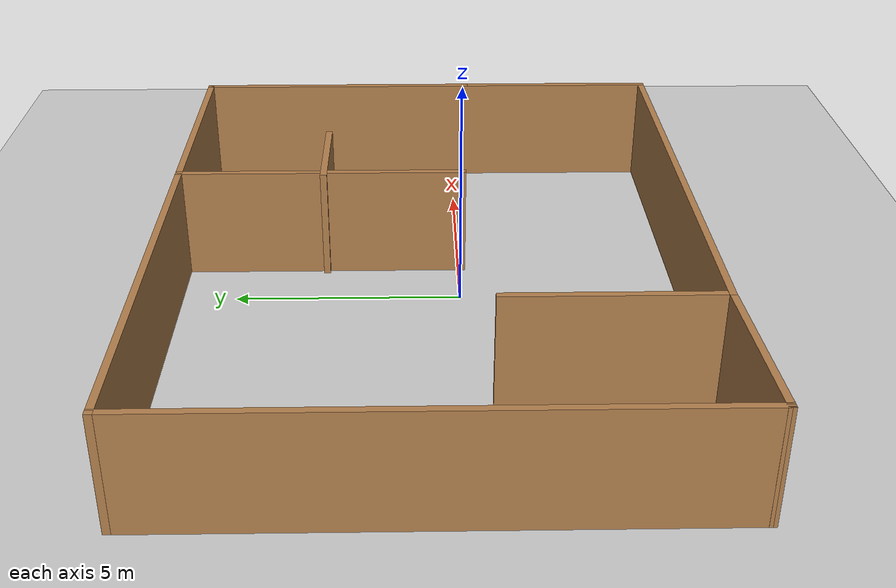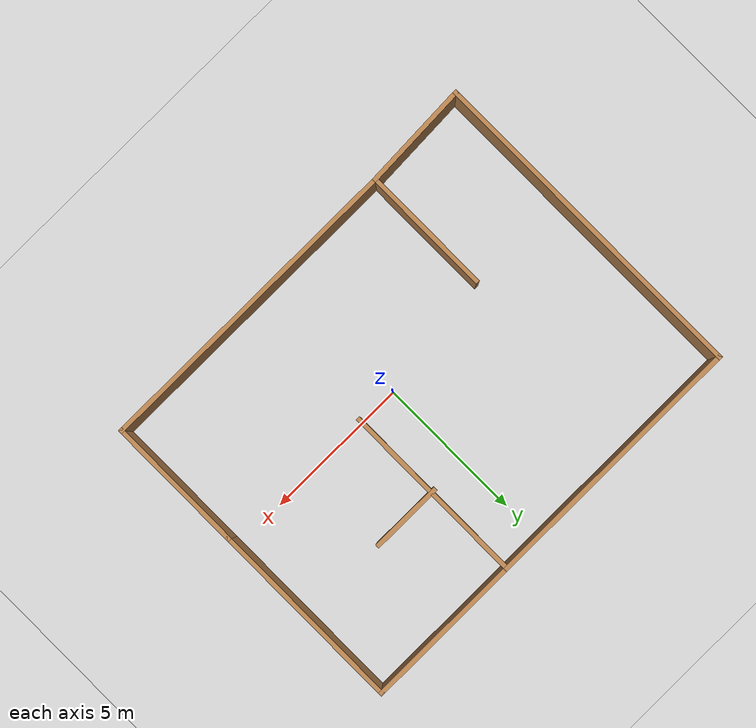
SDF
<sdf version="1.7">
 <world name="default">
  <light name="sun" type="directional">
   <pose>0 0 10 0 -0 0</pose>
   <diffuse>0.8 0.8 0.8 1</diffuse>
   <specular>0.2 0.2 0.2 1</specular>
   <attenuation>
    <range>1000</range>
    <constant>0.9</constant>
    <linear>0.01</linear>
    <quadratic>0.001</quadratic>
   </attenuation>
   <direction>-0.5 0.1 -0.9</direction>
   <spot><inner_angle>0</inner_angle><outer_angle>0</outer_angle><falloff>0</falloff></spot>
  </light>
  <model name="ground_plane">
   <static>1</static>
   <link name="link">
    <collision name="collision">
     <geometry><plane><normal>0 0 1</normal><size>100 100</size></plane></geometry>
     <surface>
      <contact><collide_bitmask>65535</collide_bitmask></contact>
      <friction><ode><mu>100</mu><mu2>50</mu2></ode></friction>
     </surface>
    </collision>
    <visual name="visual">
     <cast_shadows>0</cast_shadows>
     <geometry><plane><normal>0 0 1</normal><size>100 100</size></plane></geometry>
     <material>
      <script><uri>file://media/materials/scripts/gazebo.material</uri><name>Gazebo/Grey</name></script>
     </material>
    </visual>
   </link>
  </model>
  <gravity>0 0 -9.8</gravity>
  <magnetic_field>6e-06 2.3e-05 -4.2e-05</magnetic_field>
  <atmosphere type="adiabatic"/>
  <physics type="ode">
   <max_step_size>0.001</max_step_size>
   <real_time_factor>1</real_time_factor>
   <real_time_update_rate>1000</real_time_update_rate>
  </physics>
  <scene><ambient>0.4 0.4 0.4 1</ambient><background>0.7 0.7 0.7 1</background><shadows>1</shadows></scene>
  <spherical_coordinates>
   <surface_model>EARTH_WGS84</surface_model>
   <latitude_deg>0</latitude_deg>
   <longitude_deg>0</longitude_deg>
   <elevation>0</elevation>
   <heading_deg>0</heading_deg>
  </spherical_coordinates>
  <model name="haris">
   <pose>-0.526529 0.593472 0 0 -0 0</pose>
   <link name="Wall_0">
    <collision name="Wall_0_Collision">
     <geometry><box><size>4.5 0.15 2.5</size></box></geometry>
     <pose>0 0 1.25 0 -0 0</pose>
    </collision>
    <visual name="Wall_0_Visual">
     <pose>0 0 1.25 0 -0 0</pose>
     <geometry><box><size>4.5 0.15 2.5</size></box></geometry>
     <material>
      <script><uri>file://media/materials/scripts/gazebo.material</uri><name>Gazebo/Wood</name></script>
      <ambient>1 1 1 1</ambient>
     </material>
     <meta><layer>0</layer></meta>
    </visual>
    <pose>-3.62347 -3.34847 0 0 -0 -1.5708</pose>
   </link>
   <link name="Wall_1">
    <collision name="Wall_1_Collision">
     <geometry><box><size>11 0.15 2.5</size></box></geometry>
     <pose>0 0 1.25 0 -0 0</pose>
    </collision>
    <visual name="Wall_1_Visual">
     <pose>0 0 1.25 0 -0 0</pose>
     <geometry><box><size>11 0.15 2.5</size></box></geometry>
     <material>
      <script><uri>file://media/materials/scripts/gazebo.material</uri><name>Gazebo/Wood</name></script>
      <ambient>1 1 1 1</ambient>
     </material>
     <meta><layer>0</layer></meta>
    </visual>
    <pose>1.80153 -5.52347 0 0 -0 0</pose>
   </link>
   <link name="Wall_11">
    <collision name="Wall_11_Collision">
     <geometry><box><size>2.5 0.15 2.5</size></box></geometry>
     <pose>0 0 1.25 0 -0 0</pose>
    </collision>
    <visual name="Wall_11_Visual">
     <pose>0 0 1.25 0 -0 0</pose>
     <geometry><box><size>2.5 0.15 2.5</size></box></geometry>
     <material>
      <script><uri>file://media/materials/scripts/gazebo.material</uri><name>Gazebo/Wood</name></script>
      <ambient>1 1 1 1</ambient>
     </material>
     <meta><layer>0</layer></meta>
    </visual>
    <pose>2.94924 2.44084 0 0 -0 0</pose>
   </link>
   <link name="Wall_2">
    <collision name="Wall_2_Collision">
     <geometry><box><size>4.75 0.15 2.5</size></box></geometry>
     <pose>0 0 1.25 0 -0 0</pose>
    </collision>
    <visual name="Wall_2_Visual">
     <pose>0 0 1.25 0 -0 0</pose>
     <geometry><box><size>4.75 0.15 2.5</size></box></geometry>
     <material>
      <script><uri>file://media/materials/scripts/gazebo.material</uri><name>Gazebo/Wood</name></script>
      <ambient>1 1 1 1</ambient>
     </material>
     <meta><layer>0</layer></meta>
    </visual>
    <pose>7.22653 -3.22347 0 0 -0 1.5708</pose>
   </link>
   <link name="Wall_3">
    <collision name="Wall_3_Collision">
     <geometry><box><size>6.75 0.15 2.5</size></box></geometry>
     <pose>0 0 1.25 0 -0 0</pose>
    </collision>
    <visual name="Wall_3_Visual">
     <pose>0 0 1.25 0 -0 0</pose>
     <geometry><box><size>6.75 0.15 2.5</size></box></geometry>
     <material>
      <script><uri>file://media/materials/scripts/gazebo.material</uri><name>Gazebo/Wood</name></script>
      <ambient>1 1 1 1</ambient>
     </material>
     <meta><layer>0</layer></meta>
    </visual>
    <pose>7.22653 2.37653 0 0 -0 1.5708</pose>
   </link>
   <link name="Wall_4">
    <collision name="Wall_4_Collision">
     <geometry><box><size>5.5 0.15 2.5</size></box></geometry>
     <pose>0 0 1.25 0 -0 0</pose>
    </collision>
    <visual name="Wall_4_Visual">
     <pose>0 0 1.25 0 -0 0</pose>
     <geometry><box><size>5.5 0.15 2.5</size></box></geometry>
     <material>
      <script><uri>file://media/materials/scripts/gazebo.material</uri><name>Gazebo/Wood</name></script>
      <ambient>1 1 1 1</ambient>
     </material>
     <meta><layer>0</layer></meta>
    </visual>
    <pose>4.55153 5.67653 0 0 -0 3.14159</pose>
   </link>
   <link name="Wall_5">
    <collision name="Wall_5_Collision">
     <geometry><box><size>6.5 0.15 2.5</size></box></geometry>
     <pose>0 0 1.25 0 -0 0</pose>
    </collision>
    <visual name="Wall_5_Visual">
     <pose>0 0 1.25 0 -0 0</pose>
     <geometry><box><size>6.5 0.15 2.5</size></box></geometry>
     <material>
      <script><uri>file://media/materials/scripts/gazebo.material</uri><name>Gazebo/Wood</name></script>
      <ambient>1 1 1 1</ambient>
     </material>
     <meta><layer>0</layer></meta>
    </visual>
    <pose>1.87653 2.50153 0 0 -0 -1.5708</pose>
   </link>
   <link name="Wall_7">
    <collision name="Wall_7_Collision">
     <geometry><box><size>9.25 0.15 2.5</size></box></geometry>
     <pose>0 0 1.25 0 -0 0</pose>
    </collision>
    <visual name="Wall_7_Visual">
     <pose>0 0 1.25 0 -0 0</pose>
     <geometry><box><size>9.25 0.15 2.5</size></box></geometry>
     <material>
      <script><uri>file://media/materials/scripts/gazebo.material</uri><name>Gazebo/Wood</name></script>
      <ambient>1 1 1 1</ambient>
     </material>
     <meta><layer>0</layer></meta>
    </visual>
    <pose>-2.67347 5.67653 0 0 -0 3.14159</pose>
   </link>
   <link name="Wall_8">
    <collision name="Wall_8_Collision">
     <geometry><box><size>11.5 0.15 2.5</size></box></geometry>
     <pose>0 0 1.25 0 -0 0</pose>
    </collision>
    <visual name="Wall_8_Visual">
     <pose>0 0 1.25 0 -0 0</pose>
     <geometry><box><size>11.5 0.15 2.5</size></box></geometry>
     <material>
      <script><uri>file://media/materials/scripts/gazebo.material</uri><name>Gazebo/Wood</name></script>
      <ambient>1 1 1 1</ambient>
     </material>
     <meta><layer>0</layer></meta>
    </visual>
    <pose>-7.22347 0.001529 0 0 -0 -1.5708</pose>
   </link>
   <link name="Wall_9">
    <collision name="Wall_9_Collision">
     <geometry><box><size>3.75312 0.15 2.5</size></box></geometry>
     <pose>0 0 1.25 0 -0 0</pose>
    </collision>
    <visual name="Wall_9_Visual">
     <pose>0 0 1.25 0 -0 0</pose>
     <geometry><box><size>3.75312 0.15 2.5</size></box></geometry>
     <material>
      <script><uri>file://media/materials/scripts/gazebo.material</uri><name>Gazebo/Wood</name></script>
      <ambient>1 1 1 1</ambient>
     </material>
     <meta><layer>0</layer></meta>
    </visual>
    <pose>-5.42347 -5.59847 0 0 -0 0.041643</pose>
   </link>
   <static>1</static>
  </model>
 </world>
</sdf>
